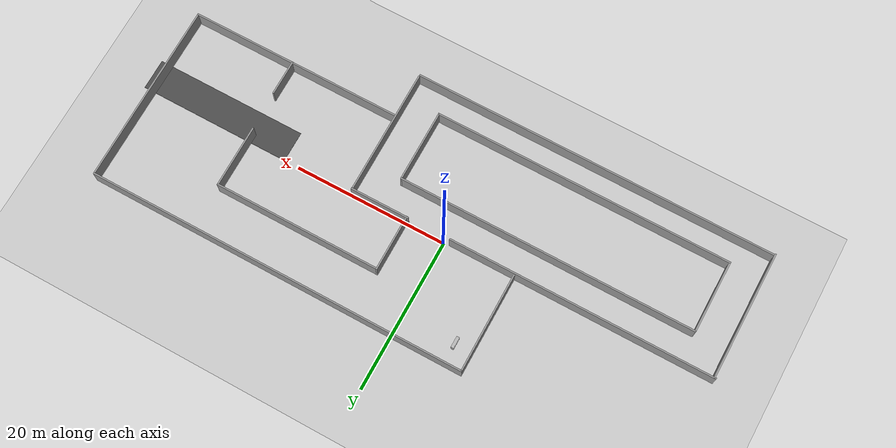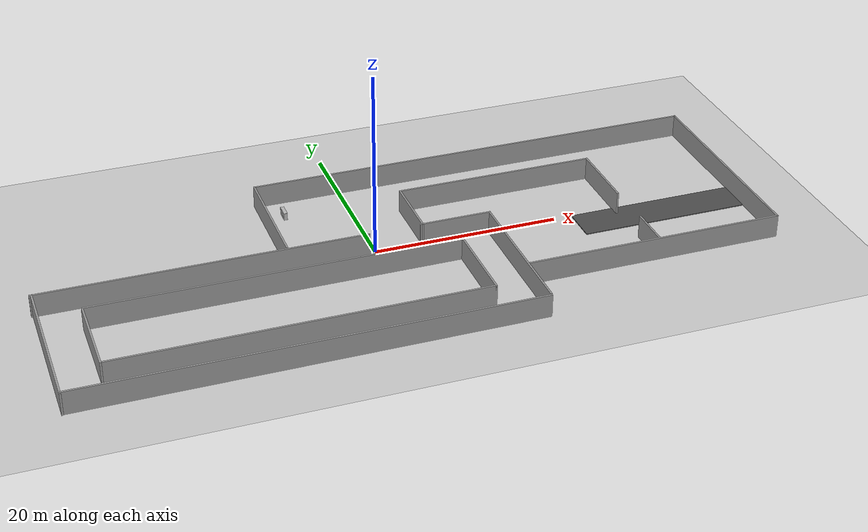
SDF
<sdf version="1.4">
 <world name="default">
  <physics type="ode">
   <gravity>0.000000 0.000000 -9.810000</gravity>
   <ode>
    <solver><type>quick</type><iters>20</iters><sor>1.000000</sor></solver>
    <constraints>
     <cfm>0.000000</cfm>
     <erp>0.200000</erp>
     <contact_max_correcting_vel>100.000000</contact_max_correcting_vel>
     <contact_surface_layer>0.000000</contact_surface_layer>
    </constraints>
   </ode>
   <real_time_update_rate>1000.000000</real_time_update_rate>
   <max_step_size>0.001000</max_step_size>
   <real_time_factor>1.000000</real_time_factor>
   <max_contacts>20</max_contacts>
  </physics>
  <light name="sun" type="directional">
   <pose>0.000000 0.000000 10.000000 0.000000 0.000000 0.000000</pose>
   <diffuse>0.800000 0.800000 0.800000 1.000000</diffuse>
   <specular>0.200000 0.200000 0.200000 1.000000</specular>
   <attenuation>
    <range>1000.000000</range>
    <constant>0.900000</constant>
    <linear>0.010000</linear>
    <quadratic>0.001000</quadratic>
   </attenuation>
   <direction>0.500000 0.100000 -0.900000</direction>
  </light>
  <model name="ground_plane">
   <static>1</static>
   <link name="link">
    <collision name="collision">
     <geometry>
      <plane><normal>0.000000 0.000000 1.000000</normal><size>100.000000 100.000000</size></plane>
     </geometry>
     <surface><friction><ode><mu>100.000000</mu><mu2>50.000000</mu2></ode></friction></surface>
    </collision>
    <visual name="visual">
     <cast_shadows>0</cast_shadows>
     <geometry>
      <plane><normal>0.000000 0.000000 1.000000</normal><size>100.000000 100.000000</size></plane>
     </geometry>
     <material>
      <script><uri>file://media/materials/scripts/gazebo.material</uri><name>Gazebo/Grey</name></script>
     </material>
    </visual>
    <velocity_decay><linear>0.000000</linear><angular>0.000000</angular></velocity_decay>
   </link>
  </model>
  <scene>
   <ambient>0.200000 0.200000 0.200000 1.000000</ambient>
   <background>0.700000 0.700000 0.700000 1.000000</background>
   <shadows>1</shadows>
  </scene>
  <include><uri>model://medium_loop_closure</uri><name>walls</name></include>
  <include><uri>model://sideboard</uri><name>sideboard</name><pose>-7 10 0 0 0 0</pose></include>
  <include><uri>model://ramp</uri><name>ramp</name><pose>32 -2 0 0 0 0</pose></include>
 </world>
</sdf>

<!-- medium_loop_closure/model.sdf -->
<sdf version='1.4'>
  <model name='MediumLoopClosure'>
    <link name='Wall_0'>
      <collision name='Wall_0_Collision'>
        <geometry>
          <box>
            <size>34.706300 0.200000 2.500000</size>
          </box>
        </geometry>
        <pose>0.000000 0.000000 1.250000 0.000000 0.000000 0.000000</pose>
      </collision>
      <visual name='Wall_0_Visual'>
        <pose>0.000000 0.000000 1.250000 0.000000 0.000000 0.000000</pose>
        <geometry>
          <box>
            <size>34.706300 0.200000 2.500000</size>
          </box>
        </geometry>
        <material>
          <script>
            <uri>file://media/materials/scripts/gazebo.material</uri>
            <name>Gazebo/Grey</name>
          </script>
        </material>
      </visual>
      <velocity_decay>
        <linear>0.000000</linear>
        <angular>0.000000</angular>
      </velocity_decay>
      <pose>-18.022600 -0.256992 0.000000 0.000000 0.000000 3.141590</pose>
    </link>
    <link name='Wall_10'>
      <collision name='Wall_10_Collision'>
        <geometry>
          <box>
            <size>47.663000 0.200000 2.500000</size>
          </box>
        </geometry>
        <pose>0.000000 0.000000 1.250000 0.000000 0.000000 0.000000</pose>
      </collision>
      <visual name='Wall_10_Visual'>
        <pose>0.000000 0.000000 1.250000 0.000000 0.000000 0.000000</pose>
        <geometry>
          <box>
            <size>47.663000 0.200000 2.500000</size>
          </box>
        </geometry>
        <material>
          <script>
            <uri>file://media/materials/scripts/gazebo.material</uri>
            <name>Gazebo/Grey</name>
          </script>
        </material>
      </visual>
      <velocity_decay>
        <linear>0.000000</linear>
        <angular>0.000000</angular>
      </velocity_decay>
      <pose>-11.306700 -16.862400 0.000000 0.000000 0.000000 0.000000</pose>
    </link>
    <link name='Wall_12'>
      <collision name='Wall_12_Collision'>
        <geometry>
          <box>
            <size>38.981600 0.200000 2.500000</size>
          </box>
        </geometry>
        <pose>0.000000 0.000000 1.250000 0.000000 0.000000 0.000000</pose>
      </collision>
      <visual name='Wall_12_Visual'>
        <pose>0.000000 0.000000 1.250000 0.000000 0.000000 0.000000</pose>
        <geometry>
          <box>
            <size>38.981600 0.200000 2.500000</size>
          </box>
        </geometry>
        <material>
          <script>
            <uri>file://media/materials/scripts/gazebo.material</uri>
            <name>Gazebo/Grey</name>
          </script>
        </material>
      </visual>
      <velocity_decay>
        <linear>0.000000</linear>
        <angular>0.000000</angular>
      </velocity_decay>
      <pose>-11.402300 -4.124480 0.000000 0.000000 0.000000 0.000000</pose>
    </link>
    <link name='Wall_13'>
      <collision name='Wall_13_Collision'>
        <geometry>
          <box>
            <size>9.592970 0.200000 2.500000</size>
          </box>
        </geometry>
        <pose>0.000000 0.000000 1.250000 0.000000 0.000000 0.000000</pose>
      </collision>
      <visual name='Wall_13_Visual'>
        <pose>0.000000 0.000000 1.250000 0.000000 0.000000 0.000000</pose>
        <geometry>
          <box>
            <size>9.592970 0.200000 2.500000</size>
          </box>
        </geometry>
        <material>
          <script>
            <uri>file://media/materials/scripts/gazebo.material</uri>
            <name>Gazebo/Grey</name>
          </script>
        </material>
      </visual>
      <velocity_decay>
        <linear>0.000000</linear>
        <angular>0.000000</angular>
      </velocity_decay>
      <pose>7.988480 -8.820960 0.000000 0.000000 0.000000 -1.570800</pose>
    </link>
    <link name='Wall_14'>
      <collision name='Wall_14_Collision'>
        <geometry>
          <box>
            <size>39.052700 0.200000 2.500000</size>
          </box>
        </geometry>
        <pose>0.000000 0.000000 1.250000 0.000000 0.000000 0.000000</pose>
      </collision>
      <visual name='Wall_14_Visual'>
        <pose>0.000000 0.000000 1.250000 0.000000 0.000000 0.000000</pose>
        <geometry>
          <box>
            <size>39.052700 0.200000 2.500000</size>
          </box>
        </geometry>
        <material>
          <script>
            <uri>file://media/materials/scripts/gazebo.material</uri>
            <name>Gazebo/Grey</name>
          </script>
        </material>
      </visual>
      <velocity_decay>
        <linear>0.000000</linear>
        <angular>0.000000</angular>
      </velocity_decay>
      <pose>-11.437900 -13.517400 0.000000 0.000000 0.000000 3.141590</pose>
    </link>
    <link name='Wall_15'>
      <collision name='Wall_15_Collision'>
        <geometry>
          <box>
            <size>9.521810 0.200000 2.500000</size>
          </box>
        </geometry>
        <pose>0.000000 0.000000 1.250000 0.000000 0.000000 0.000000</pose>
      </collision>
      <visual name='Wall_15_Visual'>
        <pose>0.000000 0.000000 1.250000 0.000000 0.000000 0.000000</pose>
        <geometry>
          <box>
            <size>9.521810 0.200000 2.500000</size>
          </box>
        </geometry>
        <material>
          <script>
            <uri>file://media/materials/scripts/gazebo.material</uri>
            <name>Gazebo/Grey</name>
          </script>
        </material>
      </visual>
      <velocity_decay>
        <linear>0.000000</linear>
        <angular>0.000000</angular>
      </velocity_decay>
      <pose>-30.864300 -8.856540 0.000000 0.000000 0.000000 1.570800</pose>
    </link>
    <link name='Wall_17'>
      <collision name='Wall_17_Collision'>
        <geometry>
          <box>
            <size>13.144000 0.200000 2.500000</size>
          </box>
        </geometry>
        <pose>0.000000 0.000000 1.250000 0.000000 0.000000 0.000000</pose>
      </collision>
      <visual name='Wall_17_Visual'>
        <pose>0.000000 0.000000 1.250000 0.000000 0.000000 0.000000</pose>
        <geometry>
          <box>
            <size>13.144000 0.200000 2.500000</size>
          </box>
        </geometry>
        <material>
          <script>
            <uri>file://media/materials/scripts/gazebo.material</uri>
            <name>Gazebo/Grey</name>
          </script>
        </material>
      </visual>
      <velocity_decay>
        <linear>0.000000</linear>
        <angular>0.000000</angular>
      </velocity_decay>
      <pose>-9.380990 6.482190 0.000000 0.000000 0.000000 1.570800</pose>
    </link>
    <link name='Wall_18'>
      <collision name='Wall_18_Collision'>
        <geometry>
          <box>
            <size>50.046400 0.200000 2.500000</size>
          </box>
        </geometry>
        <pose>0.000000 0.000000 1.250000 0.000000 0.000000 0.000000</pose>
      </collision>
      <visual name='Wall_18_Visual'>
        <pose>0.000000 0.000000 1.250000 0.000000 0.000000 0.000000</pose>
        <geometry>
          <box>
            <size>50.046400 0.200000 2.500000</size>
          </box>
        </geometry>
        <material>
          <script>
            <uri>file://media/materials/scripts/gazebo.material</uri>
            <name>Gazebo/Grey</name>
          </script>
        </material>
      </visual>
      <velocity_decay>
        <linear>0.000000</linear>
        <angular>0.000000</angular>
      </velocity_decay>
      <pose>15.542200 12.954200 0.000000 0.000000 0.000000 0.000000</pose>
    </link>
    <link name='Wall_19'>
      <collision name='Wall_19_Collision'>
        <geometry>
          <box>
            <size>23.960900 0.200000 2.500000</size>
          </box>
        </geometry>
        <pose>0.000000 0.000000 1.250000 0.000000 0.000000 0.000000</pose>
      </collision>
      <visual name='Wall_19_Visual'>
        <pose>0.000000 0.000000 1.250000 0.000000 0.000000 0.000000</pose>
        <geometry>
          <box>
            <size>23.960900 0.200000 2.500000</size>
          </box>
        </geometry>
        <material>
          <script>
            <uri>file://media/materials/scripts/gazebo.material</uri>
            <name>Gazebo/Grey</name>
          </script>
        </material>
      </visual>
      <velocity_decay>
        <linear>0.000000</linear>
        <angular>0.000000</angular>
      </velocity_decay>
      <pose>40.465500 1.073750 0.000000 0.000000 0.000000 -1.570800</pose>
    </link>
    <link name='Wall_20'>
      <collision name='Wall_20_Collision'>
        <geometry>
          <box>
            <size>27.982900 0.200000 2.500000</size>
          </box>
        </geometry>
        <pose>0.000000 0.000000 1.250000 0.000000 0.000000 0.000000</pose>
      </collision>
      <visual name='Wall_20_Visual'>
        <pose>0.000000 0.000000 1.250000 0.000000 0.000000 0.000000</pose>
        <geometry>
          <box>
            <size>27.982900 0.200000 2.500000</size>
          </box>
        </geometry>
        <material>
          <script>
            <uri>file://media/materials/scripts/gazebo.material</uri>
            <name>Gazebo/Grey</name>
          </script>
        </material>
      </visual>
      <velocity_decay>
        <linear>0.000000</linear>
        <angular>0.000000</angular>
      </velocity_decay>
      <pose>26.574000 -10.806700 0.000000 0.000000 0.000000 3.141590</pose>
    </link>
    <link name='Wall_24'>
      <collision name='Wall_24_Collision'>
        <geometry>
          <box>
            <size>7.810900 0.200000 2.500000</size>
          </box>
        </geometry>
        <pose>0.000000 0.000000 1.250000 0.000000 0.000000 0.000000</pose>
      </collision>
      <visual name='Wall_24_Visual'>
        <pose>0.000000 0.000000 1.250000 0.000000 0.000000 0.000000</pose>
        <geometry>
          <box>
            <size>7.810900 0.200000 2.500000</size>
          </box>
        </geometry>
        <material>
          <script>
            <uri>file://media/materials/scripts/gazebo.material</uri>
            <name>Gazebo/Grey</name>
          </script>
        </material>
      </visual>
      <velocity_decay>
        <linear>0.000000</linear>
        <angular>0.000000</angular>
      </velocity_decay>
      <pose>8.715820 -0.175391 0.000000 0.000000 0.000000 0.000000</pose>
    </link>
    <link name='Wall_26'>
      <collision name='Wall_26_Collision'>
        <geometry>
          <box>
            <size>7.433640 0.200000 2.500000</size>
          </box>
        </geometry>
        <pose>0.000000 0.000000 1.250000 0.000000 0.000000 0.000000</pose>
      </collision>
      <visual name='Wall_26_Visual'>
        <pose>0.000000 0.000000 1.250000 0.000000 0.000000 0.000000</pose>
        <geometry>
          <box>
            <size>7.433640 0.200000 2.500000</size>
          </box>
        </geometry>
        <material>
          <script>
            <uri>file://media/materials/scripts/gazebo.material</uri>
            <name>Gazebo/Grey</name>
          </script>
        </material>
      </visual>
      <velocity_decay>
        <linear>0.000000</linear>
        <angular>0.000000</angular>
      </velocity_decay>
      <pose>5.078010 3.410720 0.000000 0.000000 0.000000 1.570800</pose>
    </link>
    <link name='Wall_27'>
      <collision name='Wall_27_Collision'>
        <geometry>
          <box>
            <size>21.900900 0.200000 2.500000</size>
          </box>
        </geometry>
        <pose>0.000000 0.000000 1.250000 0.000000 0.000000 0.000000</pose>
      </collision>
      <visual name='Wall_27_Visual'>
        <pose>0.000000 0.000000 1.250000 0.000000 0.000000 0.000000</pose>
        <geometry>
          <box>
            <size>21.900900 0.200000 2.500000</size>
          </box>
        </geometry>
        <material>
          <script>
            <uri>file://media/materials/scripts/gazebo.material</uri>
            <name>Gazebo/Grey</name>
          </script>
        </material>
      </visual>
      <velocity_decay>
        <linear>0.000000</linear>
        <angular>0.000000</angular>
      </velocity_decay>
      <pose>15.928500 7.027540 0.000000 0.000000 0.000000 0.000000</pose>
    </link>
    <link name='Wall_28'>
      <collision name='Wall_28_Collision'>
        <geometry>
          <box>
            <size>8.290250 0.200000 2.500000</size>
          </box>
        </geometry>
        <pose>0.000000 0.000000 1.250000 0.000000 0.000000 0.000000</pose>
      </collision>
      <visual name='Wall_28_Visual'>
        <pose>0.000000 0.000000 1.250000 0.000000 0.000000 0.000000</pose>
        <geometry>
          <box>
            <size>8.290250 0.200000 2.500000</size>
          </box>
        </geometry>
        <material>
          <script>
            <uri>file://media/materials/scripts/gazebo.material</uri>
            <name>Gazebo/Grey</name>
          </script>
        </material>
      </visual>
      <velocity_decay>
        <linear>0.000000</linear>
        <angular>0.000000</angular>
      </velocity_decay>
      <pose>26.778900 2.982410 0.000000 0.000000 0.000000 -1.570800</pose>
    </link>
    <link name='Wall_3'>
      <collision name='Wall_3_Collision'>
        <geometry>
          <box>
            <size>16.439700 0.200000 2.500000</size>
          </box>
        </geometry>
        <pose>0.000000 0.000000 1.250000 0.000000 0.000000 0.000000</pose>
      </collision>
      <visual name='Wall_3_Visual'>
        <pose>0.000000 0.000000 1.250000 0.000000 0.000000 0.000000</pose>
        <geometry>
          <box>
            <size>16.439700 0.200000 2.500000</size>
          </box>
        </geometry>
        <material>
          <script>
            <uri>file://media/materials/scripts/gazebo.material</uri>
            <name>Gazebo/Grey</name>
          </script>
        </material>
      </visual>
      <velocity_decay>
        <linear>0.000000</linear>
        <angular>0.000000</angular>
      </velocity_decay>
      <pose>12.485200 -8.513540 0.000000 0.000000 0.000000 -1.570800</pose>
    </link>
    <link name='Wall_30'>
      <collision name='Wall_30_Collision'>
        <geometry>
          <box>
            <size>4.673430 0.200000 2.500000</size>
          </box>
        </geometry>
        <pose>0.000000 0.000000 1.250000 0.000000 0.000000 0.000000</pose>
      </collision>
      <visual name='Wall_30_Visual'>
        <pose>0.000000 0.000000 1.250000 0.000000 0.000000 0.000000</pose>
        <geometry>
          <box>
            <size>4.673430 0.200000 2.500000</size>
          </box>
        </geometry>
        <material>
          <script>
            <uri>file://media/materials/scripts/gazebo.material</uri>
            <name>Gazebo/Grey</name>
          </script>
        </material>
      </visual>
      <velocity_decay>
        <linear>0.000000</linear>
        <angular>0.000000</angular>
      </velocity_decay>
      <pose>26.969300 -8.534300 0.000000 0.000000 0.000000 -1.570800</pose>
    </link>
    <link name='Wall_5'>
      <collision name='Wall_5_Collision'>
        <geometry>
          <box>
            <size>16.868100 0.200000 2.500000</size>
          </box>
        </geometry>
        <pose>0.000000 0.000000 1.250000 0.000000 0.000000 0.000000</pose>
      </collision>
      <visual name='Wall_5_Visual'>
        <pose>0.000000 0.000000 1.250000 0.000000 0.000000 0.000000</pose>
        <geometry>
          <box>
            <size>16.868100 0.200000 2.500000</size>
          </box>
        </geometry>
        <material>
          <script>
            <uri>file://media/materials/scripts/gazebo.material</uri>
            <name>Gazebo/Grey</name>
          </script>
        </material>
      </visual>
      <velocity_decay>
        <linear>0.000000</linear>
        <angular>0.000000</angular>
      </velocity_decay>
      <pose>-35.126400 -8.622790 0.000000 0.000000 0.000000 -1.570800</pose>
    </link>
    <static>1</static>
  </model>
</sdf>

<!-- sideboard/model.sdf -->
<sdf version="1.6">
  <model name="reo2016/sideboard">
    <link name="1_link">
      <collision name="1_col">
        <geometry>
          <box>
            <size>0.39 1.465 0.035</size>
          </box>
        </geometry>
      </collision>
      <visual name="1_vis">
        <geometry>
          <box>
            <size>0.39 1.465 0.035</size>
          </box>
        </geometry>
      </visual>
      <pose>0.0 0.0 0.0175 0 0 0</pose>
    </link>
    <link name="2_link">
      <collision name="2_col">
        <geometry>
          <box>
            <size>0.39 1.465 0.017</size>
          </box>
        </geometry>
      </collision>
      <visual name="2_vis">
        <geometry>
          <box>
            <size>0.39 1.465 0.017</size>
          </box>
        </geometry>
      </visual>
      <pose>0.0 0.0 0.3815 0 0 0</pose>
    </link>
    <link name="3_link">
      <collision name="3_col">
        <geometry>
          <box>
            <size>0.39 1.465 0.035</size>
          </box>
        </geometry>
      </collision>
      <visual name="3_vis">
        <geometry>
          <box>
            <size>0.39 1.465 0.035</size>
          </box>
        </geometry>
      </visual>
      <pose>0.0 0.0 0.805 0 0 0</pose>
    </link>
    <link name="4_link">
      <collision name="4_col">
        <geometry>
          <box>
            <size>0.39 0.035 0.795</size>
          </box>
        </geometry>
      </collision>
      <visual name="4_vis">
        <geometry>
          <box>
            <size>0.39 0.035 0.795</size>
          </box>
        </geometry>
      </visual>
      <pose>0.0 -0.715 0.3975 0 0 0</pose>
    </link>
    <link name="5_link">
      <collision name="5_col">
        <geometry>
          <box>
            <size>0.39 0.017 0.795</size>
          </box>
        </geometry>
      </collision>
      <visual name="5_vis">
        <geometry>
          <box>
            <size>0.39 0.017 0.795</size>
          </box>
        </geometry>
      </visual>
      <pose>0.0 -0.35 0.3975 0 0 0</pose>
    </link>
    <link name="6_link">
      <collision name="6_col">
        <geometry>
          <box>
            <size>0.39 0.017 0.795</size>
          </box>
        </geometry>
      </collision>
      <visual name="6_vis">
        <geometry>
          <box>
            <size>0.39 0.017 0.795</size>
          </box>
        </geometry>
      </visual>
      <pose>0.0 0 0.3975 0 0 0</pose>
    </link>
    <link name="7_link">
      <collision name="7_col">
        <geometry>
          <box>
            <size>0.39 0.017 0.795</size>
          </box>
        </geometry>
      </collision>
      <visual name="7_vis">
        <geometry>
          <box>
            <size>0.39 0.017 0.795</size>
          </box>
        </geometry>
      </visual>
      <pose>0.0 0.35 0.3975 0 0 0</pose>
    </link>
    <link name="8_link">
      <collision name="8_col">
        <geometry>
          <box>
            <size>0.39 0.035 0.795</size>
          </box>
        </geometry>
      </collision>
      <visual name="8_vis">
        <geometry>
          <box>
            <size>0.39 0.035 0.795</size>
          </box>
        </geometry>
      </visual>
      <pose>0.0 0.715 0.3975 0 0 0</pose>
    </link>
    <link name="on_top_of">
      <virtual_volume name="on_top_of_vv">
        <geometry>
          <box>
            <size>0.4 1.46 0.25</size>
          </box>
        </geometry>
        <pose>0.0 0.0 0.985 0 0 0</pose>
      </virtual_volume>
    </link>
    <link name="on_top_of_left">
      <virtual_volume name="on_top_of_left_vv">
        <geometry>
          <box>
            <size>0.4 0.73 0.25</size>
          </box>
        </geometry>
        <pose>0.0 -0.365 0.985 0 0 0</pose>
      </virtual_volume>
    </link>
    <link name="on_top_of_right">
      <virtual_volume name="on_top_of_right_vv">
        <geometry>
          <box>
            <size>0.4 0.73 0.25</size>
          </box>
        </geometry>
        <pose>0.0 0.365 0.985 0 0 0</pose>
      </virtual_volume>
    </link>
    <link name="in_front_of">
      <virtual_volume name="in_front_of_vv">
        <geometry>
          <box>
            <size>0.2 0.5 0.01</size>
          </box>
        </geometry>
        <pose>-0.9 0.0 0.005 0 0 0</pose>
      </virtual_volume>
    </link>
    <static>true</static>
  </model>
</sdf>

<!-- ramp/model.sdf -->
<sdf version="1.4">
  <model name="ramp">
    <static>true</static>
    <pose>0 0 0.2 0 0.15 0</pose>
    <link name="link">
      <collision name="collision">
        <geometry>
          <box>
            <size>20 4 .1</size>
          </box>
        </geometry>
      </collision>
      <visual name="visual">
        <geometry>
          <box>
            <size>20 4 .1</size>
          </box>
        </geometry>
        <material>
          <script>
            <uri>model://asphalt_plane/materials/scripts/asphalt.material</uri>
            <name>vrc/asphalt</name>
          </script>
        </material>
      </visual>
    </link>
  </model>
</sdf>
